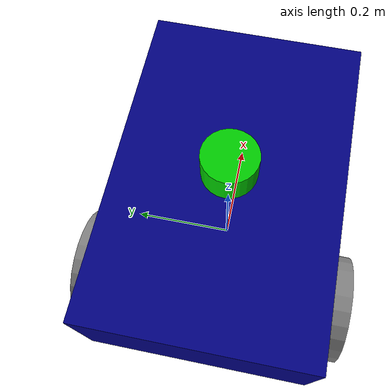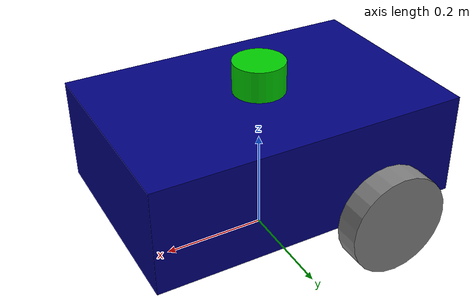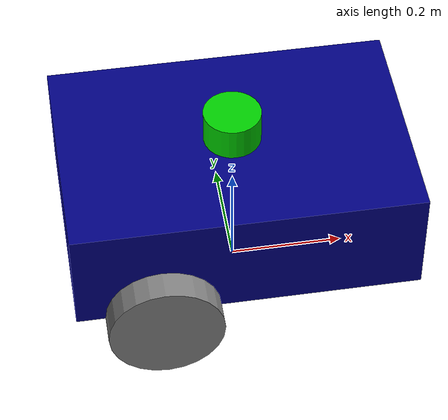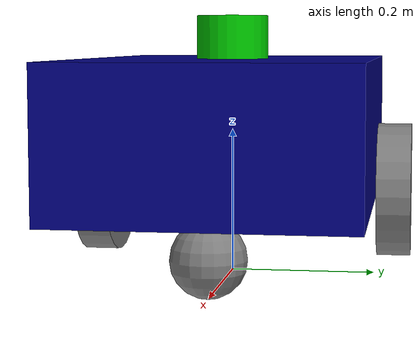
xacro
<?xml version="1.0"?>
<robot name="sum2026" xmlns:xacro="http://www.ros.org/wiki/xacro">

    <xacro:arg name="use_sim" default="false" />

    <xacro:include filename="common_properties.xacro" />
    <xacro:include filename="mobile_base.xacro" />
    <xacro:include filename="lidar.xacro" />

    <xacro:if value="$(arg use_sim)">
        <ros2_control name="sum2026" type="system">
            <hardware>
                <plugin>gz_ros2_control/GazeboSimSystem</plugin>
            </hardware>
            <joint name="base_right_wheel_joint">
                <command_interface name="velocity" />
                <state_interface name="position" />
                <state_interface name="velocity" />
            </joint>
            <joint name="base_left_wheel_joint">
                <command_interface name="velocity" />
                <state_interface name="position" />
                <state_interface name="velocity" />
            </joint>
        </ros2_control>

        <gazebo reference="caster_wheel_link">
            <mu1 value="0.1" />
            <mu2 value="0.1" />
        </gazebo>

        <gazebo>
            <plugin filename="gz_ros2_control-system" name="gz_ros2_control::GazeboSimROS2ControlPlugin">
                <parameters>$(find sum2026_bringup)/config/sum2026_controllers.yaml</parameters>
            </plugin>
        </gazebo>
    </xacro:if>

</robot>

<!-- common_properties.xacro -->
<robot xmlns:xacro="http://www.ros.org/wiki/xacro">

    <material name="blue">
        <color rgba="0 0 0.5 1" />
    </material>

    <material name="grey">
        <color rgba="0.5 0.5 0.5 1" />
    </material>

    <material name="green">
        <color rgba="0 0.8 0 1" />
    </material>

    <xacro:macro name="box_inertia" params="m x y z o_xyz o_rpy">
        <inertial>
            <mass value="${m}" />
            <origin xyz="${o_xyz}" rpy="${o_rpy}" />
            <inertia ixx="${(m/12) * (y*y + z*z)}" ixy="0" ixz="0"
                     iyy="${(m/12) * (x*x + z*z)}" iyz="0"
                     izz="${(m/12) * (x*x + y*y)}" />
        </inertial>
    </xacro:macro>

    <xacro:macro name="cylinder_inertia" params="m r l o_xyz o_rpy">
        <inertial>
            <mass value="${m}" />
            <origin xyz="${o_xyz}" rpy="${o_rpy}" />
            <inertia ixx="${(m/12) * (3*r*r + l*l)}" ixy="0" ixz="0"
                     iyy="${(m/12) * (3*r*r + l*l)}" iyz="0"
                     izz="${(m/2) * (r*r)}" />
        </inertial>
    </xacro:macro>

    <xacro:macro name="sphere_inertia" params="m r o_xyz o_rpy">
        <inertial>
            <mass value="${m}" />
            <origin xyz="${o_xyz}" rpy="${o_rpy}" />
            <inertia ixx="${(2/5) * m * r * r}" ixy="0" ixz="0"
                     iyy="${(2/5) * m * r * r}" iyz="0"
                     izz="${(2/5) * m * r * r}" />
        </inertial>
    </xacro:macro>

</robot>

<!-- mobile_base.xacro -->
<robot xmlns:xacro="http://www.ros.org/wiki/xacro">

    <xacro:property name="base_length" value="0.6" />
    <xacro:property name="base_width" value="0.4" />
    <xacro:property name="base_height" value="0.2" />
    <xacro:property name="wheel_radius" value="0.1" />
    <xacro:property name="wheel_length" value="0.05" />

    <link name="base_footprint" />

    <link name="base_link">
        <visual>
            <geometry>
                <box size="${base_length} ${base_width} ${base_height}" />
            </geometry>
            <origin xyz="0 0 ${base_height / 2.0}" rpy="0 0 0" />
            <material name="blue" />
        </visual>
        <collision>
            <geometry>
                <box size="${base_length} ${base_width} ${base_height}" />
            </geometry>
            <origin xyz="0 0 ${base_height / 2.0}" rpy="0 0 0" />
        </collision>
        <xacro:box_inertia m="5.0" x="${base_length}" y="${base_width}" z="${base_height}"
                           o_xyz="0 0 ${base_height / 2.0}" o_rpy="0 0 0" />
    </link>

    <xacro:macro name="wheel_link" params="prefix">
        <link name="${prefix}_wheel_link">
            <visual>
                <geometry>
                    <cylinder radius="${wheel_radius}" length="${wheel_length}" />
                </geometry>
                <origin xyz="0 0 0" rpy="${pi / 2.0} 0 0" />
                <material name="grey" />
            </visual>
            <collision>
                <geometry>
                    <sphere radius="${wheel_radius}" />
                </geometry>
                <origin xyz="0 0 0" rpy="0 0 0" />
            </collision>
            <xacro:cylinder_inertia m="1.0" r="${wheel_radius}" l="${wheel_length}"
                                    o_xyz="0 0 0" o_rpy="${pi / 2.0} 0 0" />
        </link>
    </xacro:macro>

    <xacro:wheel_link prefix="right" />
    <xacro:wheel_link prefix="left" />

    <link name="caster_wheel_link">
        <visual>
            <geometry>
                <sphere radius="${wheel_radius / 2.0}" />
            </geometry>
            <origin xyz="0 0 0" rpy="0 0 0" />
            <material name="grey" />
        </visual>
        <collision>
            <geometry>
                <sphere radius="${wheel_radius / 2.0}" />
            </geometry>
            <origin xyz="0 0 0" rpy="0 0 0" />
        </collision>
        <xacro:sphere_inertia m="0.5" r="${wheel_radius / 2.0}"
                              o_xyz="0 0 0" o_rpy="0 0 0" />
    </link>

    <joint name="base_joint" type="fixed">
        <parent link="base_footprint" />
        <child link="base_link" />
        <origin xyz="0 0 ${wheel_radius}" rpy="0 0 0"/>
    </joint>

    <joint name="base_right_wheel_joint" type="continuous">
        <parent link="base_link" />
        <child link="right_wheel_link" />
        <origin xyz="${-base_length / 4.0} ${-(base_width + wheel_length) / 2.0} 0" rpy="0 0 0" />
        <axis xyz="0 1 0" />
    </joint>

    <joint name="base_left_wheel_joint" type="continuous">
        <parent link="base_link" />
        <child link="left_wheel_link" />
        <origin xyz="${-base_length / 4.0} ${(base_width + wheel_length) / 2.0} 0" rpy="0 0 0" />
        <axis xyz="0 1 0" />
    </joint>

    <joint name="base_caster_wheel_joint" type="fixed">
        <parent link="base_link" />
        <child link="caster_wheel_link" />
        <origin xyz="${base_length / 3.0} 0 ${-wheel_radius / 2.0}" rpy="0 0 0" />
    </joint>

</robot>

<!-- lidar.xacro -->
<robot xmlns:xacro="http://www.ros.org/wiki/xacro">

    <xacro:property name="lidar_radius" value="0.05" />
    <xacro:property name="lidar_height" value="0.06" />
    <xacro:property name="lidar_mass" value="0.2" />
    <xacro:property name="lidar_xyz" value="0 0 ${base_height}" />
    <xacro:property name="lidar_samples" value="360" />
    <xacro:property name="lidar_update_rate" value="10" />
    <xacro:property name="lidar_range_min" value="0.12" />
    <xacro:property name="lidar_range_max" value="10.0" />
    <xacro:property name="lidar_range_resolution" value="0.01" />

    <link name="lidar_link">
        <visual>
            <geometry>
                <cylinder radius="${lidar_radius}" length="${lidar_height}" />
            </geometry>
            <origin xyz="0 0 ${lidar_height / 2.0}" rpy="0 0 0" />
            <material name="green">
                <color rgba="0 0.8 0 1" />
            </material>
        </visual>
        <collision>
            <geometry>
                <cylinder radius="${lidar_radius}" length="${lidar_height}" />
            </geometry>
            <origin xyz="0 0 ${lidar_height / 2.0}" rpy="0 0 0" />
        </collision>
        <xacro:cylinder_inertia m="${lidar_mass}" r="${lidar_radius}" l="${lidar_height}"
                                o_xyz="0 0 ${lidar_height / 2.0}" o_rpy="0 0 0" />
    </link>

    <joint name="base_lidar_joint" type="fixed">
        <parent link="base_link" />
        <child link="lidar_link" />
        <origin xyz="${lidar_xyz}" rpy="0 0 0" />
    </joint>

    <xacro:if value="$(arg use_sim)">
        <gazebo reference="lidar_link">
            <sensor name="lidar" type="gpu_lidar">
                <topic>scan</topic>
                <update_rate>${lidar_update_rate}</update_rate>
                <lidar>
                    <scan>
                        <horizontal>
                            <samples>${lidar_samples}</samples>
                            <resolution>1</resolution>
                            <min_angle>-${pi}</min_angle>
                            <max_angle>${pi}</max_angle>
                        </horizontal>
                    </scan>
                    <range>
                        <min>${lidar_range_min}</min>
                        <max>${lidar_range_max}</max>
                        <resolution>${lidar_range_resolution}</resolution>
                    </range>
                </lidar>
                <always_on>true</always_on>
                <visualize>true</visualize>
            </sensor>
        </gazebo>
    </xacro:if>

</robot>
